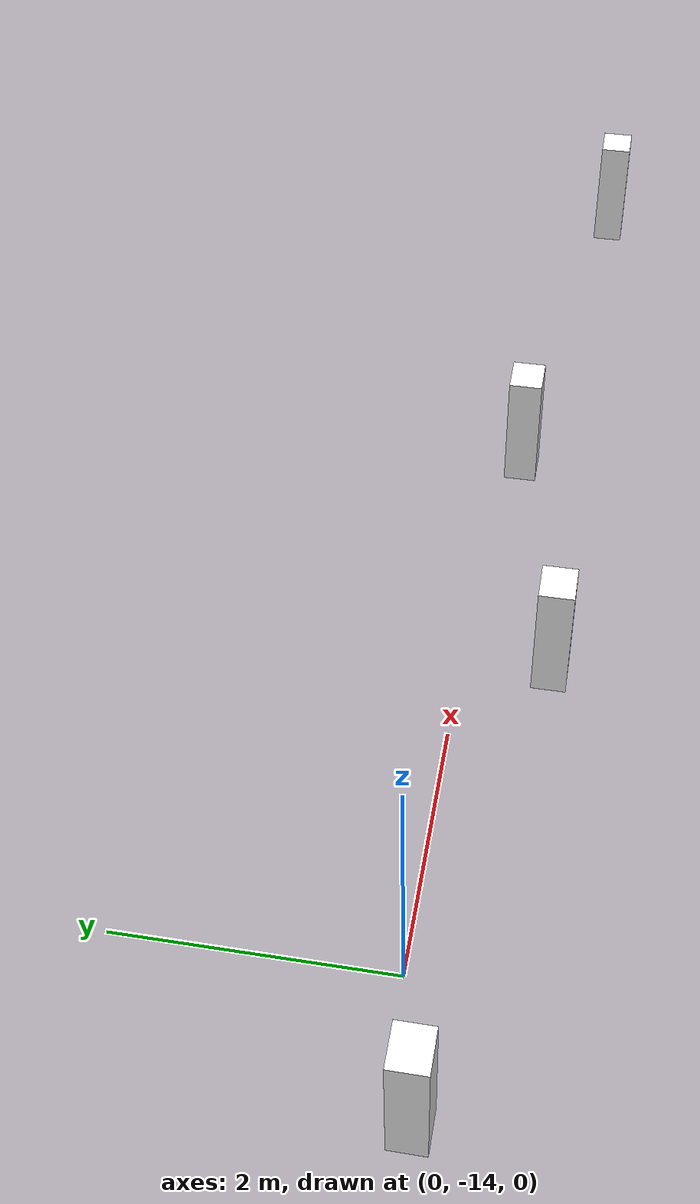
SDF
<sdf version="1.7">
 <world name="__default__">
  <model name="white_track">
   <link name="link">
    <inertial>
     <mass>0.0996089</mass>
     <inertia>
      <ixx>0.0105319</ixx>
      <ixy>0</ixy>
      <ixz>0</ixz>
      <iyy>0.0107538</iyy>
      <iyz>0</iyz>
      <izz>0.00152677</izz>
     </inertia>
    </inertial>
    <pose>-0.120665 -2.1745 0 0 -0 0</pose>
    <visual name="visual">
     <geometry><box><size>0.324552 0.280354 1.09096</size></box></geometry>
     <material>
      <ambient>1 1 1 1</ambient>
      <diffuse>1 1 1 1</diffuse>
      <specular>1 1 1 1</specular>
      <emissive>1 1 1 1</emissive>
     </material>
    </visual>
    <collision name="collision">
     <geometry><box><size>0.324552 0.280354 1.09096</size></box></geometry>
     <surface>
      <friction>
       <ode><mu>1</mu><mu2>1</mu2><fdir1>0 0 0</fdir1><slip1>0</slip1><slip2>0</slip2></ode>
       <torsional>
        <coefficient>1</coefficient>
        <patch_radius>0</patch_radius>
        <surface_radius>0</surface_radius>
        <use_patch_radius>1</use_patch_radius>
        <ode><slip>0</slip></ode>
       </torsional>
      </friction>
      <bounce><restitution_coefficient>0</restitution_coefficient><threshold>1e+06</threshold></bounce>
      <contact>
       <collide_without_contact>0</collide_without_contact>
       <collide_without_contact_bitmask>1</collide_without_contact_bitmask>
       <collide_bitmask>1</collide_bitmask>
       <ode>
        <soft_cfm>0</soft_cfm>
        <soft_erp>0.2</soft_erp>
        <kp>1e+13</kp>
        <kd>1</kd>
        <max_vel>0.01</max_vel>
        <min_depth>0</min_depth>
       </ode>
       <bullet>
        <split_impulse>1</split_impulse>
        <split_impulse_penetration_threshold>-0.01</split_impulse_penetration_threshold>
        <soft_cfm>0</soft_cfm>
        <soft_erp>0.2</soft_erp>
        <kp>1e+13</kp>
        <kd>1</kd>
       </bullet>
      </contact>
     </surface>
    </collision>
   </link>
   <link name="link_clone">
    <inertial>
     <mass>0.0996089</mass>
     <inertia>
      <ixx>0.0105319</ixx>
      <ixy>0</ixy>
      <ixz>0</ixz>
      <iyy>0.0107538</iyy>
      <iyz>0</iyz>
      <izz>0.00152677</izz>
     </inertia>
    </inertial>
    <pose>-4.03455 -1.67791 0 0 -0 0</pose>
    <visual name="visual">
     <geometry><box><size>0.324552 0.280354 1.09096</size></box></geometry>
     <material>
      <ambient>1 1 1 1</ambient>
      <diffuse>1 1 1 1</diffuse>
      <specular>1 1 1 1</specular>
      <emissive>1 1 1 1</emissive>
     </material>
    </visual>
    <collision name="collision">
     <geometry><box><size>0.324552 0.280354 1.09096</size></box></geometry>
     <surface>
      <friction>
       <ode><mu>1</mu><mu2>1</mu2><fdir1>0 0 0</fdir1><slip1>0</slip1><slip2>0</slip2></ode>
       <torsional>
        <coefficient>1</coefficient>
        <patch_radius>0</patch_radius>
        <surface_radius>0</surface_radius>
        <use_patch_radius>1</use_patch_radius>
        <ode><slip>0</slip></ode>
       </torsional>
      </friction>
      <bounce><restitution_coefficient>0</restitution_coefficient><threshold>1e+06</threshold></bounce>
      <contact>
       <collide_without_contact>0</collide_without_contact>
       <collide_without_contact_bitmask>1</collide_without_contact_bitmask>
       <collide_bitmask>1</collide_bitmask>
       <ode>
        <soft_cfm>0</soft_cfm>
        <soft_erp>0.2</soft_erp>
        <kp>1e+13</kp>
        <kd>1</kd>
        <max_vel>0.01</max_vel>
        <min_depth>0</min_depth>
       </ode>
       <bullet>
        <split_impulse>1</split_impulse>
        <split_impulse_penetration_threshold>-0.01</split_impulse_penetration_threshold>
        <soft_cfm>0</soft_cfm>
        <soft_erp>0.2</soft_erp>
        <kp>1e+13</kp>
        <kd>1</kd>
       </bullet>
      </contact>
     </surface>
    </collision>
   </link>
   <link name="link">
    <inertial>
     <mass>0.0996089</mass>
     <inertia>
      <ixx>0.0105319</ixx>
      <ixy>0</ixy>
      <ixz>0</ixz>
      <iyy>0.0107538</iyy>
      <iyz>0</iyz>
      <izz>0.00152677</izz>
     </inertia>
    </inertial>
    <pose>-0.120665 -2.1745 0 0 -0 0</pose>
    <visual name="visual">
     <geometry><box><size>0.324552 0.280354 1.09096</size></box></geometry>
     <material>
      <ambient>1 1 1 1</ambient>
      <diffuse>1 1 1 1</diffuse>
      <specular>1 1 1 1</specular>
      <emissive>1 1 1 1</emissive>
     </material>
    </visual>
    <collision name="collision">
     <geometry><box><size>0.324552 0.280354 1.09096</size></box></geometry>
     <surface>
      <friction>
       <ode><mu>1</mu><mu2>1</mu2><fdir1>0 0 0</fdir1><slip1>0</slip1><slip2>0</slip2></ode>
       <torsional>
        <coefficient>1</coefficient>
        <patch_radius>0</patch_radius>
        <surface_radius>0</surface_radius>
        <use_patch_radius>1</use_patch_radius>
        <ode><slip>0</slip></ode>
       </torsional>
      </friction>
      <bounce><restitution_coefficient>0</restitution_coefficient><threshold>1e+06</threshold></bounce>
      <contact>
       <collide_without_contact>0</collide_without_contact>
       <collide_without_contact_bitmask>1</collide_without_contact_bitmask>
       <collide_bitmask>1</collide_bitmask>
       <ode>
        <soft_cfm>0</soft_cfm>
        <soft_erp>0.2</soft_erp>
        <kp>1e+13</kp>
        <kd>1</kd>
        <max_vel>0.01</max_vel>
        <min_depth>0</min_depth>
       </ode>
       <bullet>
        <split_impulse>1</split_impulse>
        <split_impulse_penetration_threshold>-0.01</split_impulse_penetration_threshold>
        <soft_cfm>0</soft_cfm>
        <soft_erp>0.2</soft_erp>
        <kp>1e+13</kp>
        <kd>1</kd>
       </bullet>
      </contact>
     </surface>
    </collision>
   </link>
   <link name="link_clone">
    <inertial>
     <mass>0.0996089</mass>
     <inertia>
      <ixx>0.0105319</ixx>
      <ixy>0</ixy>
      <ixz>0</ixz>
      <iyy>0.0107538</iyy>
      <iyz>0</iyz>
      <izz>0.00152677</izz>
     </inertia>
    </inertial>
    <pose>-4.03455 -1.67791 0 0 -0 0</pose>
    <visual name="visual">
     <geometry><box><size>0.324552 0.280354 1.09096</size></box></geometry>
     <material>
      <ambient>1 1 1 1</ambient>
      <diffuse>1 1 1 1</diffuse>
      <specular>1 1 1 1</specular>
      <emissive>1 1 1 1</emissive>
     </material>
    </visual>
    <collision name="collision">
     <geometry><box><size>0.324552 0.280354 1.09096</size></box></geometry>
     <surface>
      <friction>
       <ode><mu>1</mu><mu2>1</mu2><fdir1>0 0 0</fdir1><slip1>0</slip1><slip2>0</slip2></ode>
       <torsional>
        <coefficient>1</coefficient>
        <patch_radius>0</patch_radius>
        <surface_radius>0</surface_radius>
        <use_patch_radius>1</use_patch_radius>
        <ode><slip>0</slip></ode>
       </torsional>
      </friction>
      <bounce><restitution_coefficient>0</restitution_coefficient><threshold>1e+06</threshold></bounce>
      <contact>
       <collide_without_contact>0</collide_without_contact>
       <collide_without_contact_bitmask>1</collide_without_contact_bitmask>
       <collide_bitmask>1</collide_bitmask>
       <ode>
        <soft_cfm>0</soft_cfm>
        <soft_erp>0.2</soft_erp>
        <kp>1e+13</kp>
        <kd>1</kd>
        <max_vel>0.01</max_vel>
        <min_depth>0</min_depth>
       </ode>
       <bullet>
        <split_impulse>1</split_impulse>
        <split_impulse_penetration_threshold>-0.01</split_impulse_penetration_threshold>
        <soft_cfm>0</soft_cfm>
        <soft_erp>0.2</soft_erp>
        <kp>1e+13</kp>
        <kd>1</kd>
       </bullet>
      </contact>
     </surface>
    </collision>
   </link>
   <static>0</static>
   <pose>3.27988 -12.4974 0 0 -0 0</pose>
  </model>
  <model name="white_track_0">
   <link name="link">
    <inertial>
     <mass>0.0996089</mass>
     <inertia>
      <ixx>0.0105319</ixx>
      <ixy>0</ixy>
      <ixz>0</ixz>
      <iyy>0.0107538</iyy>
      <iyz>0</iyz>
      <izz>0.00152677</izz>
     </inertia>
    </inertial>
    <pose>-0.120665 -2.1745 0 0 -0 0</pose>
    <visual name="visual">
     <geometry><box><size>0.324552 0.280354 1.09096</size></box></geometry>
     <material>
      <ambient>1 1 1 1</ambient>
      <diffuse>1 1 1 1</diffuse>
      <specular>1 1 1 1</specular>
      <emissive>1 1 1 1</emissive>
     </material>
    </visual>
    <collision name="collision">
     <geometry><box><size>0.324552 0.280354 1.09096</size></box></geometry>
     <surface>
      <friction>
       <ode><mu>1</mu><mu2>1</mu2><fdir1>0 0 0</fdir1><slip1>0</slip1><slip2>0</slip2></ode>
       <torsional>
        <coefficient>1</coefficient>
        <patch_radius>0</patch_radius>
        <surface_radius>0</surface_radius>
        <use_patch_radius>1</use_patch_radius>
        <ode><slip>0</slip></ode>
       </torsional>
      </friction>
      <bounce><restitution_coefficient>0</restitution_coefficient><threshold>1e+06</threshold></bounce>
      <contact>
       <collide_without_contact>0</collide_without_contact>
       <collide_without_contact_bitmask>1</collide_without_contact_bitmask>
       <collide_bitmask>1</collide_bitmask>
       <ode>
        <soft_cfm>0</soft_cfm>
        <soft_erp>0.2</soft_erp>
        <kp>1e+13</kp>
        <kd>1</kd>
        <max_vel>0.01</max_vel>
        <min_depth>0</min_depth>
       </ode>
       <bullet>
        <split_impulse>1</split_impulse>
        <split_impulse_penetration_threshold>-0.01</split_impulse_penetration_threshold>
        <soft_cfm>0</soft_cfm>
        <soft_erp>0.2</soft_erp>
        <kp>1e+13</kp>
        <kd>1</kd>
       </bullet>
      </contact>
     </surface>
    </collision>
   </link>
   <link name="link_clone">
    <inertial>
     <mass>0.0996089</mass>
     <inertia>
      <ixx>0.0105319</ixx>
      <ixy>0</ixy>
      <ixz>0</ixz>
      <iyy>0.0107538</iyy>
      <iyz>0</iyz>
      <izz>0.00152677</izz>
     </inertia>
    </inertial>
    <pose>-4.03455 -1.67791 0 0 -0 0</pose>
    <visual name="visual">
     <geometry><box><size>0.324552 0.280354 1.09096</size></box></geometry>
     <material>
      <ambient>1 1 1 1</ambient>
      <diffuse>1 1 1 1</diffuse>
      <specular>1 1 1 1</specular>
      <emissive>1 1 1 1</emissive>
     </material>
    </visual>
    <collision name="collision">
     <geometry><box><size>0.324552 0.280354 1.09096</size></box></geometry>
     <surface>
      <friction>
       <ode><mu>1</mu><mu2>1</mu2><fdir1>0 0 0</fdir1><slip1>0</slip1><slip2>0</slip2></ode>
       <torsional>
        <coefficient>1</coefficient>
        <patch_radius>0</patch_radius>
        <surface_radius>0</surface_radius>
        <use_patch_radius>1</use_patch_radius>
        <ode><slip>0</slip></ode>
       </torsional>
      </friction>
      <bounce><restitution_coefficient>0</restitution_coefficient><threshold>1e+06</threshold></bounce>
      <contact>
       <collide_without_contact>0</collide_without_contact>
       <collide_without_contact_bitmask>1</collide_without_contact_bitmask>
       <collide_bitmask>1</collide_bitmask>
       <ode>
        <soft_cfm>0</soft_cfm>
        <soft_erp>0.2</soft_erp>
        <kp>1e+13</kp>
        <kd>1</kd>
        <max_vel>0.01</max_vel>
        <min_depth>0</min_depth>
       </ode>
       <bullet>
        <split_impulse>1</split_impulse>
        <split_impulse_penetration_threshold>-0.01</split_impulse_penetration_threshold>
        <soft_cfm>0</soft_cfm>
        <soft_erp>0.2</soft_erp>
        <kp>1e+13</kp>
        <kd>1</kd>
       </bullet>
      </contact>
     </surface>
    </collision>
   </link>
   <link name="link">
    <inertial>
     <mass>0.0996089</mass>
     <inertia>
      <ixx>0.0105319</ixx>
      <ixy>0</ixy>
      <ixz>0</ixz>
      <iyy>0.0107538</iyy>
      <iyz>0</iyz>
      <izz>0.00152677</izz>
     </inertia>
    </inertial>
    <pose>-0.120665 -2.1745 0 0 -0 0</pose>
    <visual name="visual">
     <geometry><box><size>0.324552 0.280354 1.09096</size></box></geometry>
     <material>
      <ambient>1 1 1 1</ambient>
      <diffuse>1 1 1 1</diffuse>
      <specular>1 1 1 1</specular>
      <emissive>1 1 1 1</emissive>
     </material>
    </visual>
    <collision name="collision">
     <geometry><box><size>0.324552 0.280354 1.09096</size></box></geometry>
     <surface>
      <friction>
       <ode><mu>1</mu><mu2>1</mu2><fdir1>0 0 0</fdir1><slip1>0</slip1><slip2>0</slip2></ode>
       <torsional>
        <coefficient>1</coefficient>
        <patch_radius>0</patch_radius>
        <surface_radius>0</surface_radius>
        <use_patch_radius>1</use_patch_radius>
        <ode><slip>0</slip></ode>
       </torsional>
      </friction>
      <bounce><restitution_coefficient>0</restitution_coefficient><threshold>1e+06</threshold></bounce>
      <contact>
       <collide_without_contact>0</collide_without_contact>
       <collide_without_contact_bitmask>1</collide_without_contact_bitmask>
       <collide_bitmask>1</collide_bitmask>
       <ode>
        <soft_cfm>0</soft_cfm>
        <soft_erp>0.2</soft_erp>
        <kp>1e+13</kp>
        <kd>1</kd>
        <max_vel>0.01</max_vel>
        <min_depth>0</min_depth>
       </ode>
       <bullet>
        <split_impulse>1</split_impulse>
        <split_impulse_penetration_threshold>-0.01</split_impulse_penetration_threshold>
        <soft_cfm>0</soft_cfm>
        <soft_erp>0.2</soft_erp>
        <kp>1e+13</kp>
        <kd>1</kd>
       </bullet>
      </contact>
     </surface>
    </collision>
   </link>
   <link name="link_clone">
    <inertial>
     <mass>0.0996089</mass>
     <inertia>
      <ixx>0.0105319</ixx>
      <ixy>0</ixy>
      <ixz>0</ixz>
      <iyy>0.0107538</iyy>
      <iyz>0</iyz>
      <izz>0.00152677</izz>
     </inertia>
    </inertial>
    <pose>-4.03455 -1.67791 0 0 -0 0</pose>
    <visual name="visual">
     <geometry><box><size>0.324552 0.280354 1.09096</size></box></geometry>
     <material>
      <ambient>1 1 1 1</ambient>
      <diffuse>1 1 1 1</diffuse>
      <specular>1 1 1 1</specular>
      <emissive>1 1 1 1</emissive>
     </material>
    </visual>
    <collision name="collision">
     <geometry><box><size>0.324552 0.280354 1.09096</size></box></geometry>
     <surface>
      <friction>
       <ode><mu>1</mu><mu2>1</mu2><fdir1>0 0 0</fdir1><slip1>0</slip1><slip2>0</slip2></ode>
       <torsional>
        <coefficient>1</coefficient>
        <patch_radius>0</patch_radius>
        <surface_radius>0</surface_radius>
        <use_patch_radius>1</use_patch_radius>
        <ode><slip>0</slip></ode>
       </torsional>
      </friction>
      <bounce><restitution_coefficient>0</restitution_coefficient><threshold>1e+06</threshold></bounce>
      <contact>
       <collide_without_contact>0</collide_without_contact>
       <collide_without_contact_bitmask>1</collide_without_contact_bitmask>
       <collide_bitmask>1</collide_bitmask>
       <ode>
        <soft_cfm>0</soft_cfm>
        <soft_erp>0.2</soft_erp>
        <kp>1e+13</kp>
        <kd>1</kd>
        <max_vel>0.01</max_vel>
        <min_depth>0</min_depth>
       </ode>
       <bullet>
        <split_impulse>1</split_impulse>
        <split_impulse_penetration_threshold>-0.01</split_impulse_penetration_threshold>
        <soft_cfm>0</soft_cfm>
        <soft_erp>0.2</soft_erp>
        <kp>1e+13</kp>
        <kd>1</kd>
       </bullet>
      </contact>
     </surface>
    </collision>
   </link>
   <static>0</static>
   <pose>9.61125 -12.4869 0 0 -0 0</pose>
  </model>
 </world>
</sdf>
